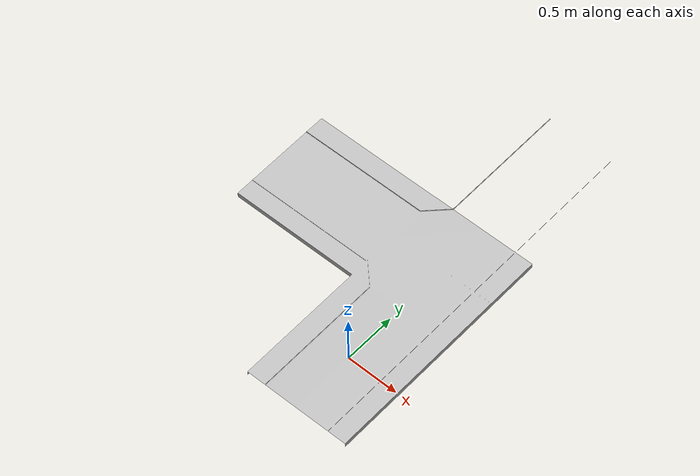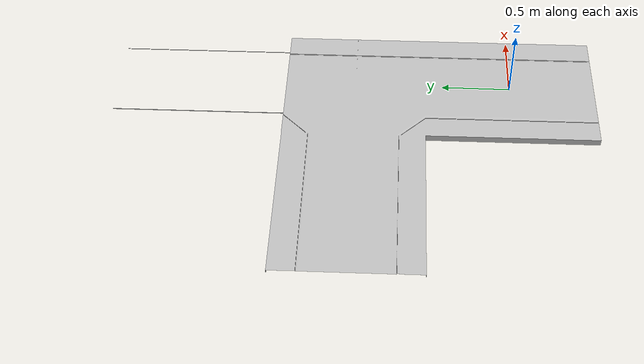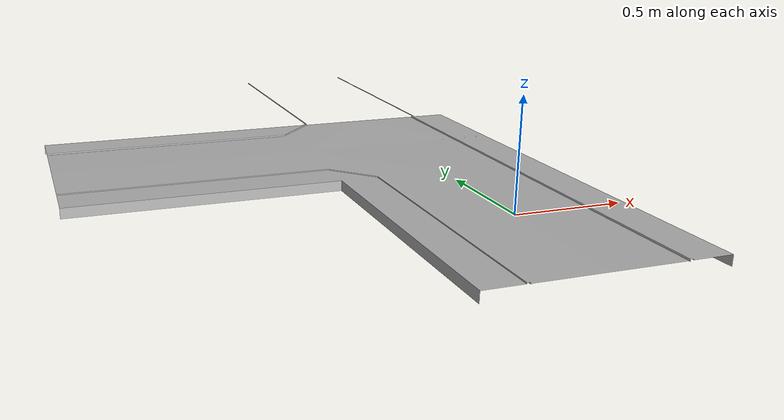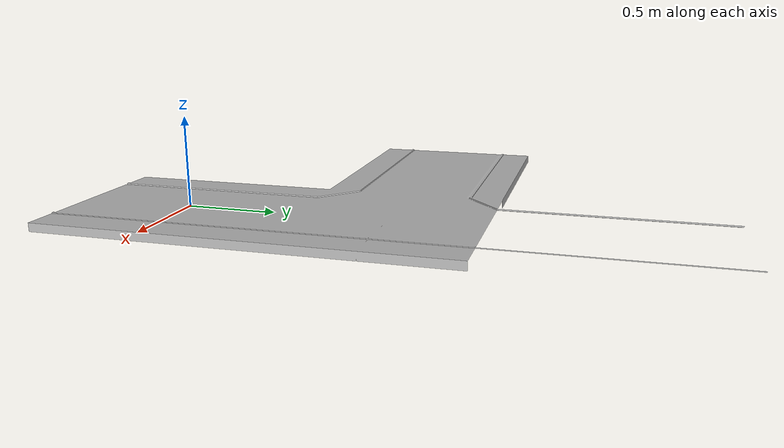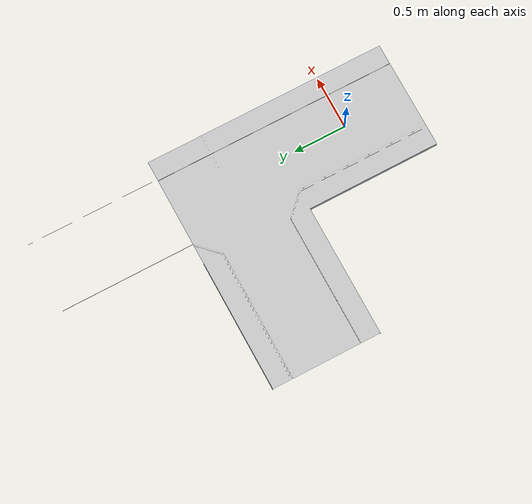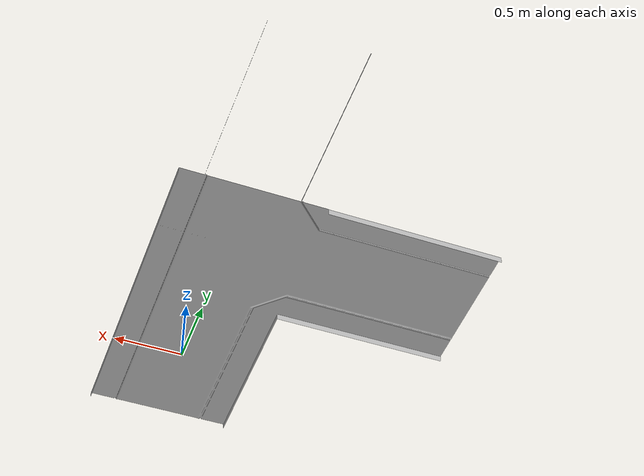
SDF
<?xml version="1.0"?>
<sdf version="1.9">
  <model name="TJunctionRightArm Road">
    <static>true</static>
    <link name="link">
      <collision name="collision">
        <geometry>
          <mesh>
            <scale>0.05 0.05 0.05</scale>
            <uri>model://Circuito/TJunctionRightArm Road/meshes/TJunctionRightArm.dae</uri>
          </mesh>
        </geometry>
      </collision>
      <visual name="road">
        <geometry>
          <mesh>
            <scale>0.05 0.05 0.05</scale>
            <uri>model://Circuito/TJunctionRightArm Road/meshes/TJunctionRightArm.dae</uri>
          </mesh>
        </geometry>
      </visual>
    </link>
  </model>
</sdf>
